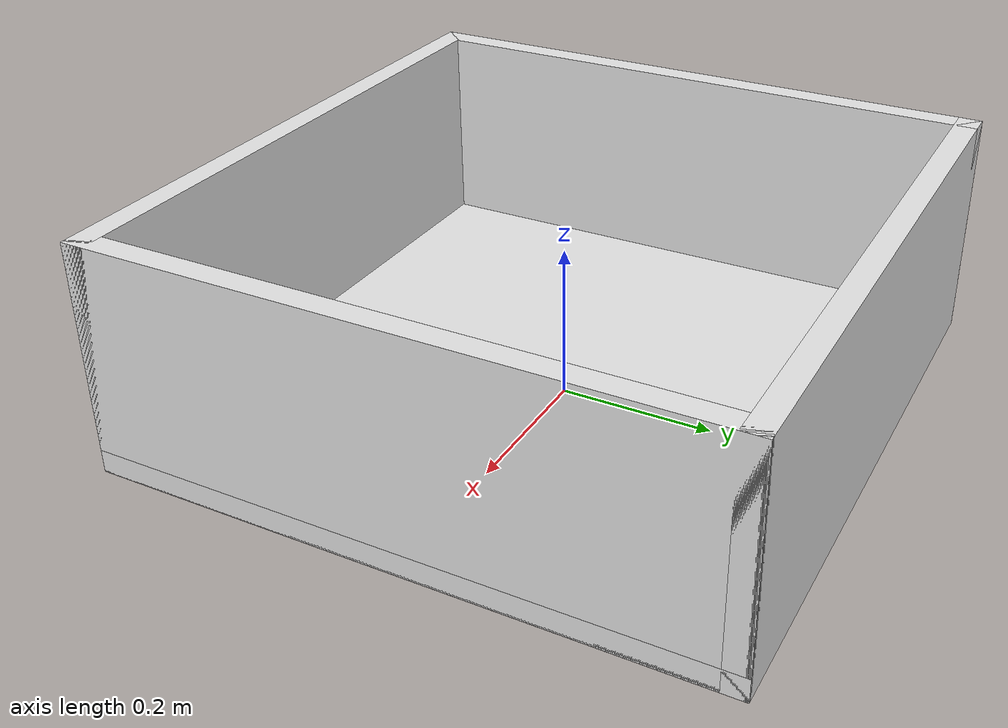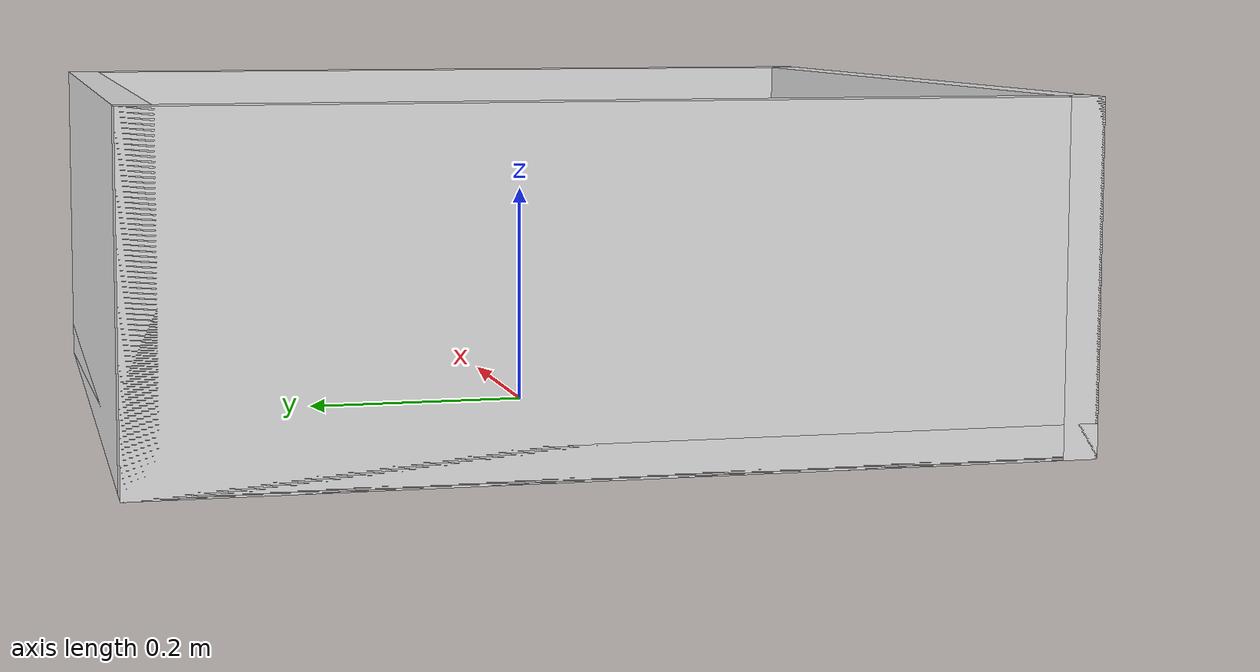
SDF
<?xml version="1.0"?>
<sdf version="1.7">
  <model name="square_bin_model">
    <!--
    Cube-shaped bin:
      Dimensions: 0.80m x 0.80m x 0.30m
      Wall thickness: 0.03m
      No slope panel
      Origin at center bottom
    Axes:
      +X: Front
      +Y: Left
      +Z: Up
    -->

    <link name="bin_base">
      <inertial>
        <mass>18.70</mass>
        <inertia>
          <ixx>0.79</ixx>
          <ixy>0</ixy>
          <ixz>0</ixz>
          <iyy>0.53</iyy>
          <iyz>0</iyz>
          <izz>1.2</izz>
        </inertia>
      </inertial>

      <!-- FRONT WALL -->
      <!-- Size: X=0.03 (thickness), Y=0.80 (width), Z=0.30 (height) -->
      <!-- Position at X=0.385m, Z=0.15m -->
      <visual name="front_visual">
        <pose>0.385 0 0.15 0 0 0</pose>
        <geometry>
          <box>
            <size>0.03 0.80 0.30</size>
          </box>
        </geometry>
        <material>
          <diffuse>0.9 0.9 0.9 1.0</diffuse>
        </material>
      </visual>
      <collision name="front_collision">
        <pose>0.385 0 0.15 0 0 0</pose>
        <geometry>
          <box>
            <size>0.03 0.80 0.30</size>
          </box>
        </geometry>
        <drake:proximity_properties>
          <drake:compliant_hydroelastic/>
          <drake:hydroelastic_modulus>1.0e6</drake:hydroelastic_modulus>
        </drake:proximity_properties>
      </collision>

      <!-- BACK WALL -->
      <!-- Size: X=0.03 (thickness), Y=0.80 (width), Z=0.30 (height) -->
      <!-- Position at X=-0.385m, Z=0.15m -->
      <visual name="back_visual">
        <pose>-0.385 0 0.15 0 0 0</pose>
        <geometry>
          <box>
            <size>0.03 0.80 0.30</size>
          </box>
        </geometry>
        <material>
          <diffuse>0.9 0.9 0.9 1.0</diffuse>
        </material>
      </visual>
      <collision name="back_collision">
        <pose>-0.385 0 0.15 0 0 0</pose>
        <geometry>
          <box>
            <size>0.03 0.80 0.30</size>
          </box>
        </geometry>
        <drake:proximity_properties>
          <drake:compliant_hydroelastic/>
          <drake:hydroelastic_modulus>1.0e6</drake:hydroelastic_modulus>
        </drake:proximity_properties>
      </collision>

      <!-- LEFT WALL -->
      <!-- Size: X=0.80 (width), Y=0.03 (thickness), Z=0.30 (height) -->
      <!-- Position at Y=0.385m, Z=0.15m -->
      <visual name="left_visual">
        <pose>0 0.385 0.15 0 0 0</pose>
        <geometry>
          <box>
            <size>0.80 0.03 0.30</size>
          </box>
        </geometry>
        <material>
          <diffuse>0.9 0.9 0.9 1.0</diffuse>
        </material>
      </visual>
      <collision name="left_collision">
        <pose>0 0.385 0.15 0 0 0</pose>
        <geometry>
          <box>
            <size>0.80 0.03 0.30</size>
          </box>
        </geometry>
        <drake:proximity_properties>
          <drake:compliant_hydroelastic/>
          <drake:hydroelastic_modulus>1.0e6</drake:hydroelastic_modulus>
        </drake:proximity_properties>
      </collision>

      <!-- RIGHT WALL -->
      <!-- Size: X=0.80 (width), Y=0.03 (thickness), Z=0.30 (height) -->
      <!-- Position at Y=-0.385m, Z=0.15m -->
      <visual name="right_visual">
        <pose>0 -0.385 0.15 0 0 0</pose>
        <geometry>
          <box>
            <size>0.80 0.03 0.30</size>
          </box>
        </geometry>
        <material>
          <diffuse>0.9 0.9 0.9 1.0</diffuse>
        </material>
      </visual>
      <collision name="right_collision">
        <pose>0 -0.385 0.15 0 0 0</pose>
        <geometry>
          <box>
            <size>0.80 0.03 0.30</size>
          </box>
        </geometry>
        <drake:proximity_properties>
          <drake:compliant_hydroelastic/>
          <drake:hydroelastic_modulus>1.0e6</drake:hydroelastic_modulus>
        </drake:proximity_properties>
      </collision>

      <!-- BOTTOM -->
      <!-- Thickness 0.03, center at Z=0.015 (unchanged) -->
      <visual name="bottom_visual">
        <pose>0.0 0.0 0.015 0 0 0</pose>
        <geometry>
          <box>
            <size>0.80 0.80 0.03</size>
          </box>
        </geometry>
        <material>
          <diffuse>0.9 0.9 0.9 1.0</diffuse>
        </material>
      </visual>
      <collision name="bottom_collision">
        <pose>0.0 0.0 0.015 0 0 0</pose>
        <geometry>
          <box>
            <size>0.80 0.80 0.03</size>
          </box>
        </geometry>
        <drake:proximity_properties>
          <drake:compliant_hydroelastic/>
          <drake:hydroelastic_modulus>1.0e6</drake:hydroelastic_modulus>
        </drake:proximity_properties>
      </collision>

    </link>

    <!-- Frame marking the front top center of the bin -->
    <!-- Now at the front wall (X=0.385), top (Z=0.30), center in Y -->
    <frame name="bin_front_top_center">
      <pose relative_to="bin_base">0.385 0 0.30 0 0 0</pose>
    </frame>
  </model>
</sdf>
